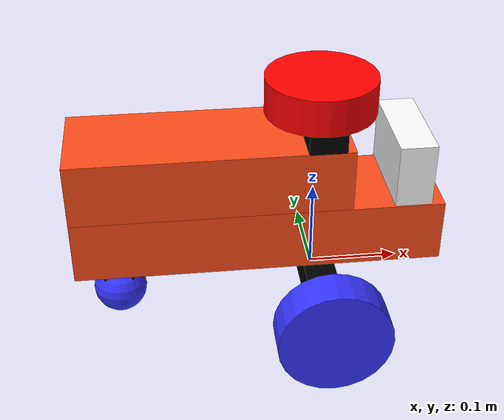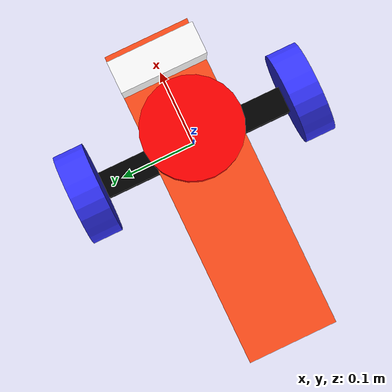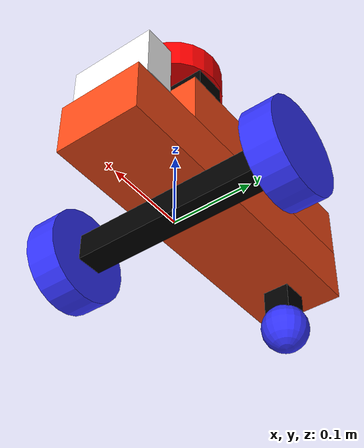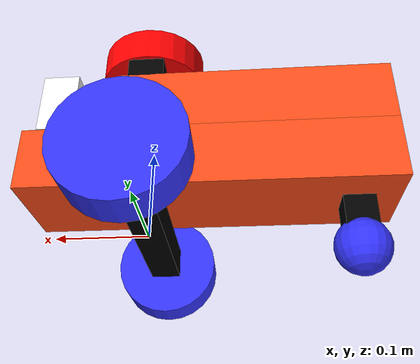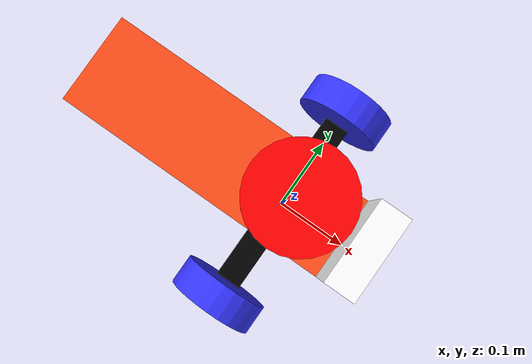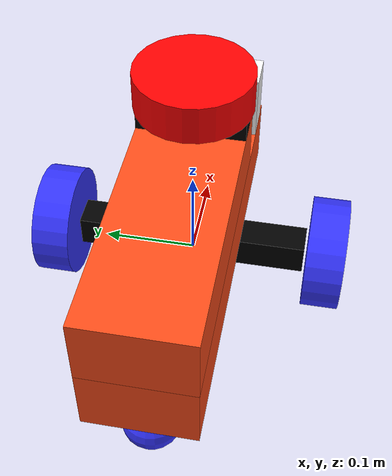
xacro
<?xml version="1.0"?>
<robot xmlns:xacro="http://www.ros.org/wiki/xacro"  name="scout">

    <!-- Argumente-->
    <xacro:arg name="use_ros2_control" default="false"/>

    <xacro:arg name="sim_mode" default="true"/>

    <!-- Roboter Teile -->

    <xacro:include filename="scout_core.xacro"/>

    <xacro:include filename="camera.xacro"/>

    <xacro:include filename="lidar.xacro"/>

    <!-- Controller -->

    <xacro:if value="$(arg use_ros2_control)">
        <xacro:include filename="ros2_control.xacro"/>
    </xacro:if>
    <xacro:unless value="$(arg use_ros2_control)">
        <xacro:include filename="gazebo_control.xacro"/>
    </xacro:unless>

</robot>

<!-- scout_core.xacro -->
<robot xmlns:xacro="http://www.ros.org/wiki/xacro">

    <xacro:include filename="inertial_macros.xacro"/>

            <!-- Farben -->
    <material name="white">
        <color rgba="1 1 1 1"/>
    </material>
    <material name="black">
        <color rgba="0 0 0 1"/>
    </material>
    <material name="blue">
        <color rgba="0.2 0.2 1 1"/>
    </material>
    <material name="yellow">
        <color rgba="1 1 0 1"/>
    </material>
    <material name="orange">
        <color rgba="1 0.3 0.1 1"/>
    </material>
    <material name="green">
        <color rgba="0.0 1.0 0.0 1.0"/>
    </material>
    <material name="red">
        <color rgba="1.0 0.0 0.0 1.0"/>
    </material>

    <!-- BASE LINK -->

    <link name="base_link">

    </link>
    <!-- CHASSIS LINK -->
    <joint name="cassis_joint" type="fixed">
        <parent link="base_link"/>
        <child link="chassis"/>
        <origin xyz="-0.26 0.0 0.0"/>
    </joint>

    <link name="chassis">
        <visual>
            <origin xyz="0.26 0.0 0.017"/>
            <geometry>
                <box size="0.034 0.25 0.034"/>
            </geometry>
            <material name="black"/>
        </visual>
        <collision>
            <origin xyz="0.26 0.0 0.017"/>
            <geometry>
                <box size="0.034 0.25 0.034"/>
            </geometry>
        </collision>
        <xacro:inertial_box mass="1.5" x="0.034" y="0.25" z="0.034">
            <origin xyz="0.0 0.0 0.0" rpy="0.0 0.0 0.0"/>
        </xacro:inertial_box>
    </link>

    <gazebo reference="chassis">
        <material>Gazebo/Black</material>
    </gazebo>

    <!-- LEFT WHEEL LINK -->

    <joint name="left_wheel_joint" type="continuous">
        <origin xyz="0 -0.148 0.017" rpy="-${pi/2} 0 0"/>
        <parent link="base_link"/>
        <child link="left_wheel"/>
        <axis xyz="0.0 0.0 1.0"/>
        <limit lower="0.0" upper="0.0" effort="0.0" velocity="0.0"/>
    </joint>

    <link name="left_wheel">
        <visual>
            <geometry>
                <cylinder radius="0.06" length="0.04"/>
            </geometry>
            <material name="blue"/>
        </visual>
        <collision>
            <geometry>
                <sphere radius="0.06"/>
            </geometry>
        </collision>
        <xacro:inertial_sphere mass="0.3" radius="0.06">
            <origin xyz="0.0 0.0 0.0" rpy="0.0 0.0 0.0"/>
        </xacro:inertial_sphere>
    </link>

    <gazebo reference="left_wheel">
        <material>Gazebo/Blue</material>
    </gazebo>

    <!-- RIGHT WHEEL LINK -->

    <joint name="right_wheel_joint" type="continuous">
        <origin xyz="0 0.148 0.017" rpy="${pi/2} 0 0"/>
        <parent link="base_link"/>
        <child link="right_wheel"/>
        <axis xyz="0.0 0.0 -1.0"/>
        <limit lower="0.0" upper="0.0" effort="0.0" velocity="0.0"/>
    </joint>

    <link name="right_wheel">
        <visual>
            <geometry>
                <cylinder radius="0.06" length="0.04"/>
            </geometry>
            <material name="blue"/>
        </visual>
        <collision>
            <geometry>
                <sphere radius="0.06"/>
            </geometry>
        </collision>
        <xacro:inertial_sphere mass="0.3" radius="0.06">
            <origin xyz="0.0 0.0 0.0" rpy="0.0 0.0 0.0"/>
        </xacro:inertial_sphere>
    </link>

    <gazebo reference="right_wheel">
        <material>Gazebo/Blue</material>
    </gazebo>

    <!-- Caster Wheel Holder and Caster Wheel -->

    <joint name="caster_wheel_holder_joint" type="fixed">
        <parent link="base_link"/>
        <child link="caster_wheel_holder"/>
        <origin xyz="-0.22 0.0 0.0"/>
    </joint>

    <link name="caster_wheel_holder">
        <visual>
            <origin xyz="0.0 0.0 0.017"/>
            <geometry>
                <box size="0.034 0.034 0.034"/>
            </geometry>
            <material name="black"/>
        </visual>
        <collision>
            <origin xyz="0.0 0.0 0.017"/>
            <geometry>
                <box size="0.034 0.034 0.034"/>
            </geometry>
        </collision>
        <xacro:inertial_box mass="1.5" x="0.034" y="0.034" z="0.034">
            <origin xyz="0.0 0.0 0.0" rpy="0.0 0.0 0.0"/>
        </xacro:inertial_box>
    </link>
    <gazebo reference="caster_wheel_holder">
        <material>Gazebo/Black</material>
    </gazebo>

    <!-- caster Wheel-->

    <joint name="caster_wheel_joint" type="fixed">
        <parent link="caster_wheel_holder"/>
        <child link="caster_wheel_link"/>
        <origin xyz="0.0 0.0 -0.017"/>
    </joint>

    <link name="caster_wheel_link">
        <visual>
            <geometry>
                <sphere radius="0.03"/>
            </geometry>
            <material name="blue">
            </material>
        </visual>
        <collision>
            <geometry>
                <sphere radius="0.03"/>
            </geometry>
        </collision>
        <xacro:inertial_sphere mass="0.15" radius="0.03">
            <origin xyz="0.0 0.0 0.0" rpy="0.0 0.0 0.0"/>
        </xacro:inertial_sphere>
    </link>
    <gazebo reference="caster_wheel_link">
        <material>Gazebo/Blue</material>
        <mu1 value="0.001"/>
        <mu2 value="0.001"/>
    </gazebo>

    <!-- BODY PARTS-->

    <joint name="body_joint" type="fixed">
        <parent link="base_link"/>
        <child link="body"/>
        <origin xyz="-0.065 0.0 0.069"/>
    </joint>

    <link name="body">
        <visual>
            <origin xyz="0.0 0.0 0.0"/>
            <geometry>
                <box size="0.4 0.11 0.07"/>
            </geometry>
            <material name="orange"/>
        </visual>
        <collision>
            <origin xyz="0.0 0.0 0.0"/>
            <geometry>
                <box size="0.4 0.11 0.07"/>
            </geometry>
        </collision>
        <xacro:inertial_box mass="0.5" x="0.4" y="0.11" z="0.07">
            <origin xyz="0.0 0.0 0.0" rpy="0.0 0.0 0.0"/>
        </xacro:inertial_box>
    </link>

    <gazebo reference="body">
        <material>Gazebo/Orange</material>
    </gazebo>

    <!-- BodyTop-->

    <joint name="body_top_joint" type="fixed">
        <parent link="body"/>
        <child link="body_top"/>
        <origin xyz="-0.05 0.0 0.07"/>
    </joint>

    <link name="body_top">
        <visual>
            <origin xyz="0.0 0.0 0.0"/>
            <geometry>
                <box size="0.3 0.11 0.07"/>
            </geometry>
            <material name="orange"/>
        </visual>
        <collision>
            <origin xyz="0.0 0.0 0.0"/>
            <geometry>
                <box size="0.3 0.11 0.07"/>
            </geometry>
        </collision>
        <xacro:inertial_box mass="0.5" x="0.3" y="0.11" z="0.07">
            <origin xyz="0.0 0.0 0.0" rpy="0.0 0.0 0.0"/>
        </xacro:inertial_box>
    </link>

    <gazebo reference="body_top">
        <material>Gazebo/Orange</material>
    </gazebo>

</robot>

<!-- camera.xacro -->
<robot xmlns:xacro="http://www.ros.org/wiki/xacro">

    <!-- Cam-->
    <joint name="camera_joint" type="fixed">
        <parent link="base_link"/>
        <child link="camera_link"/>
        <origin xyz="0.1 0 0.14 " rpy="0.0 0.0 0.0"/>
    </joint>

    <link name="camera_link">
        <visual>
            <origin xyz="0.0 0.0 0.0" rpy="0.0 0.0 0.0"/>
            <geometry>
                <box size="0.04 0.11 0.07"/>
            </geometry>
            <material name="white"/>
        </visual>
        <collision>
            <origin xyz="0.0 0.0 0.0" rpy="0.0 0.0 0.0"/>
            <geometry>
                <box size="0.04 0.11 0.07"/>
            </geometry>
        </collision>
        <xacro:inertial_box mass="0.2" x="0.04" y="0.11" z="0.07">
            <origin xyz="0.0 0.0 0.0" rpy="0.0 0.0 0.0"/>
        </xacro:inertial_box>
    </link>
    <gazebo reference="camera_link">
        <material>Gazebo/White</material>
    </gazebo>

    <joint name="cam_joint" type="fixed">
        <parent link="camera_link"/>
        <child link="camera_link_optical"/>
        <origin xyz="0.0 0.0 0.0" rpy="0.0 0.0 0.0"/>
    </joint>

    <link name="camera_link_optical"/>

    <gazebo reference="camera_link">
        <material>Gazebo/White</material>

        <sensor name="camera" type="camera">
            <pose> 0 0 0 0 0 0 </pose>
            <visualize>true</visualize>
            <update_rate>10</update_rate>
            <camera>
                <horizontal_fov>1.089</horizontal_fov>
                <image>
                    <format>R8G8B8</format>
                    <width>640</width>
                    <height>480</height>
                </image>
                <clip>
                    <near>0.05</near>
                    <far>8.0</far>
                </clip>
            </camera>
            <plugin name="camera_controller" filename="libgazebo_ros_camera.so">
                <frame_name>camera_link_optical</frame_name>
            </plugin>
        </sensor>
    </gazebo>

</robot>

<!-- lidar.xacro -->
<robot xmlns:xacro="http://www.ros.org/wiki/xacro">

    <!-- LIDAR-->
    <joint name="li_top_joint" type="fixed">
        <parent link="body_top"/>
        <child link="li_top"/>
        <origin xyz="0.12 0 0.047 "/>
    </joint>

    <link name="li_top">
        <visual>
            <origin xyz="0.0 0.0 0.0" rpy="0.0 0.0 0.0"/>
            <geometry>
                <box size="0.04 0.11 0.025"/>
            </geometry>
            <material name="black"/>
        </visual>
        <collision>
            <origin xyz="0.0 0.0 0.0" rpy="0.0 0.0 0.0"/>
            <geometry>
                <box size="0.4 0.11 0.025"/>
            </geometry>
        </collision>
        <xacro:inertial_box mass="0.2" x="0.04" y="0.11" z="0.025">
            <origin xyz="0.0 0.0 0.0" rpy="0.0 0.0 0.0"/>
        </xacro:inertial_box>
    </link>
    <gazebo reference="li_top">
        <material>Gazebo/Black</material>
    </gazebo>

    <joint name="lidar_joint" type="fixed">
       <origin xyz="0.0 0.0 0.03" rpy="0.0 0.0 -1.57"/>
       <parent link="li_top"/>
       <child link="laser_frame"/>
    </joint>

    <link name="laser_frame">
        <visual>
            <geometry>
                <cylinder radius="0.06" length="0.04"/>
            </geometry>
            <material name="red"/>
        </visual>
        <collision>
            <geometry>
                <cylinder radius="0.06" length="0.04"/>
            </geometry>
        </collision>
        <xacro:inertial_cylinder mass="0.01" radius="0.06" length="0.04">
            <origin xyz="0.0 0.0 0.0" rpy="0.0 0.0 0.0"/>
        </xacro:inertial_cylinder>
    </link>
    <gazebo reference="laser_frame">
        <material>Gazebo/Red</material>
    </gazebo>

        <!-- Gazebo Plugin -->

    <gazebo reference="laser_frame">
        <material>Gazebo/Red</material>

        <sensor name="laser" type="ray">
            <pose> 0 0 0 0 0 0 </pose>
            <visualize>true</visualize>
            <update_rate>10</update_rate>
            <ray>
                <scan>
                    <horizontal>
                        <samples>360</samples>
                        <resolution>1</resolution>
                        <min_angle>0.00</min_angle>
                        <max_angle>3.14</max_angle>
                    </horizontal>
                </scan>
                <range>
                    <min>0.3</min>
                    <max>12</max>
                </range>
            </ray>
            <plugin name="laser_controller" filename="libgazebo_ros_ray_sensor.so">
                <ros>
                    <argument>--ros-args --remap ~/out:=scan</argument>
                </ros>
                <output_type>sensor_msgs/LaserScan</output_type>
                <frame_name>laser_frame</frame_name>
            </plugin>
        </sensor>
    </gazebo>

</robot>
